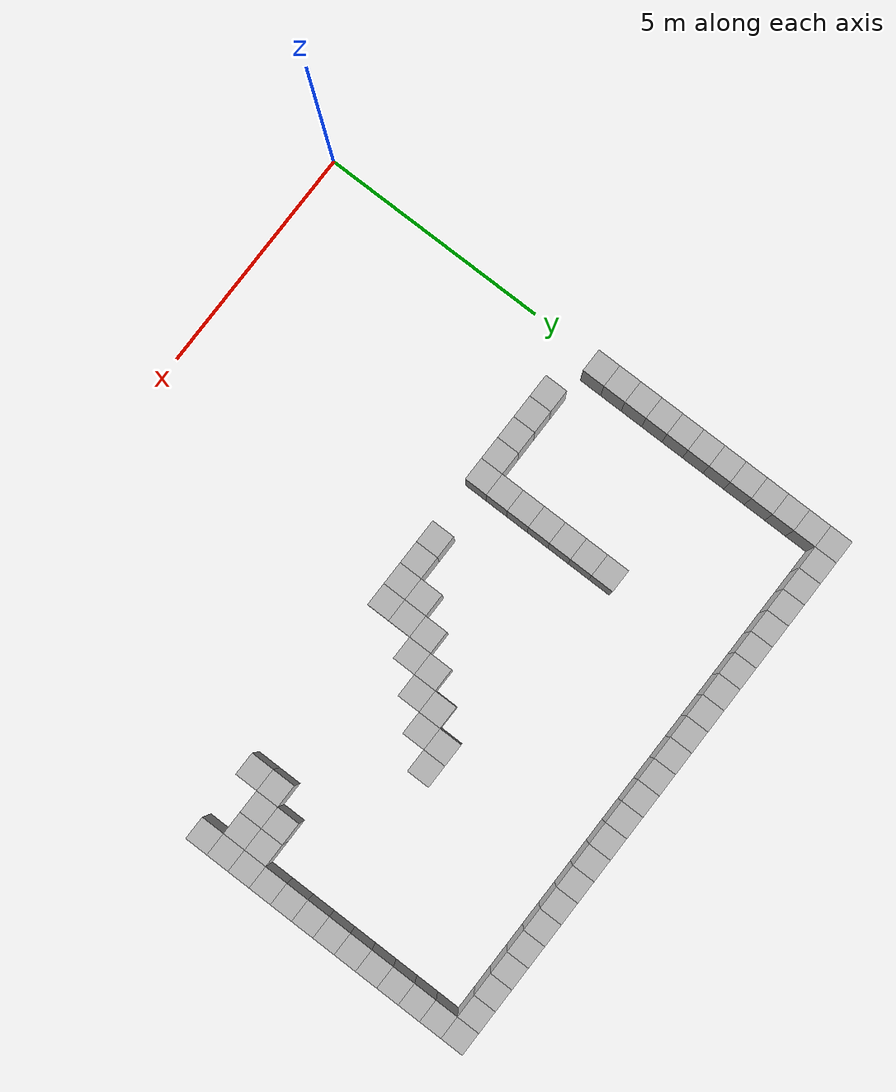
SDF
<sdf version="1.4">
 <world name="default">
  <model name="box_0_13">
   <pose>0.25 6.75 0.5 0 0 0</pose>
   <static>true</static>
   <link name="link">
    <collision name="collision"><geometry><box><size>0.5 0.5 1.0</size></box></geometry></collision>
    <visual name="visual"><geometry><box><size>0.5 0.5 1.0</size></box></geometry></visual>
   </link>
  </model>
  <model name="box_0_14">
   <pose>0.25 7.25 0.5 0 0 0</pose>
   <static>true</static>
   <link name="link">
    <collision name="collision"><geometry><box><size>0.5 0.5 1.0</size></box></geometry></collision>
    <visual name="visual"><geometry><box><size>0.5 0.5 1.0</size></box></geometry></visual>
   </link>
  </model>
  <model name="box_0_15">
   <pose>0.25 7.75 0.5 0 0 0</pose>
   <static>true</static>
   <link name="link">
    <collision name="collision"><geometry><box><size>0.5 0.5 1.0</size></box></geometry></collision>
    <visual name="visual"><geometry><box><size>0.5 0.5 1.0</size></box></geometry></visual>
   </link>
  </model>
  <model name="box_0_16">
   <pose>0.25 8.25 0.5 0 0 0</pose>
   <static>true</static>
   <link name="link">
    <collision name="collision"><geometry><box><size>0.5 0.5 1.0</size></box></geometry></collision>
    <visual name="visual"><geometry><box><size>0.5 0.5 1.0</size></box></geometry></visual>
   </link>
  </model>
  <model name="box_0_17">
   <pose>0.25 8.75 0.5 0 0 0</pose>
   <static>true</static>
   <link name="link">
    <collision name="collision"><geometry><box><size>0.5 0.5 1.0</size></box></geometry></collision>
    <visual name="visual"><geometry><box><size>0.5 0.5 1.0</size></box></geometry></visual>
   </link>
  </model>
  <model name="box_0_18">
   <pose>0.25 9.25 0.5 0 0 0</pose>
   <static>true</static>
   <link name="link">
    <collision name="collision"><geometry><box><size>0.5 0.5 1.0</size></box></geometry></collision>
    <visual name="visual"><geometry><box><size>0.5 0.5 1.0</size></box></geometry></visual>
   </link>
  </model>
  <model name="box_0_19">
   <pose>0.25 9.75 0.5 0 0 0</pose>
   <static>true</static>
   <link name="link">
    <collision name="collision"><geometry><box><size>0.5 0.5 1.0</size></box></geometry></collision>
    <visual name="visual"><geometry><box><size>0.5 0.5 1.0</size></box></geometry></visual>
   </link>
  </model>
  <model name="box_0_20">
   <pose>0.25 10.25 0.5 0 0 0</pose>
   <static>true</static>
   <link name="link">
    <collision name="collision"><geometry><box><size>0.5 0.5 1.0</size></box></geometry></collision>
    <visual name="visual"><geometry><box><size>0.5 0.5 1.0</size></box></geometry></visual>
   </link>
  </model>
  <model name="box_0_21">
   <pose>0.25 10.75 0.5 0 0 0</pose>
   <static>true</static>
   <link name="link">
    <collision name="collision"><geometry><box><size>0.5 0.5 1.0</size></box></geometry></collision>
    <visual name="visual"><geometry><box><size>0.5 0.5 1.0</size></box></geometry></visual>
   </link>
  </model>
  <model name="box_0_22">
   <pose>0.25 11.25 0.5 0 0 0</pose>
   <static>true</static>
   <link name="link">
    <collision name="collision"><geometry><box><size>0.5 0.5 1.0</size></box></geometry></collision>
    <visual name="visual"><geometry><box><size>0.5 0.5 1.0</size></box></geometry></visual>
   </link>
  </model>
  <model name="box_0_23">
   <pose>0.25 11.75 0.5 0 0 0</pose>
   <static>true</static>
   <link name="link">
    <collision name="collision"><geometry><box><size>0.5 0.5 1.0</size></box></geometry></collision>
    <visual name="visual"><geometry><box><size>0.5 0.5 1.0</size></box></geometry></visual>
   </link>
  </model>
  <model name="box_0_24">
   <pose>0.25 12.25 0.5 0 0 0</pose>
   <static>true</static>
   <link name="link">
    <collision name="collision"><geometry><box><size>0.5 0.5 1.0</size></box></geometry></collision>
    <visual name="visual"><geometry><box><size>0.5 0.5 1.0</size></box></geometry></visual>
   </link>
  </model>
  <model name="box_1_24">
   <pose>0.75 12.25 0.5 0 0 0</pose>
   <static>true</static>
   <link name="link">
    <collision name="collision"><geometry><box><size>0.5 0.5 1.0</size></box></geometry></collision>
    <visual name="visual"><geometry><box><size>0.5 0.5 1.0</size></box></geometry></visual>
   </link>
  </model>
  <model name="box_2_12">
   <pose>1.25 6.25 0.5 0 0 0</pose>
   <static>true</static>
   <link name="link">
    <collision name="collision"><geometry><box><size>0.5 0.5 1.0</size></box></geometry></collision>
    <visual name="visual"><geometry><box><size>0.5 0.5 1.0</size></box></geometry></visual>
   </link>
  </model>
  <model name="box_2_24">
   <pose>1.25 12.25 0.5 0 0 0</pose>
   <static>true</static>
   <link name="link">
    <collision name="collision"><geometry><box><size>0.5 0.5 1.0</size></box></geometry></collision>
    <visual name="visual"><geometry><box><size>0.5 0.5 1.0</size></box></geometry></visual>
   </link>
  </model>
  <model name="box_3_12">
   <pose>1.75 6.25 0.5 0 0 0</pose>
   <static>true</static>
   <link name="link">
    <collision name="collision"><geometry><box><size>0.5 0.5 1.0</size></box></geometry></collision>
    <visual name="visual"><geometry><box><size>0.5 0.5 1.0</size></box></geometry></visual>
   </link>
  </model>
  <model name="box_3_24">
   <pose>1.75 12.25 0.5 0 0 0</pose>
   <static>true</static>
   <link name="link">
    <collision name="collision"><geometry><box><size>0.5 0.5 1.0</size></box></geometry></collision>
    <visual name="visual"><geometry><box><size>0.5 0.5 1.0</size></box></geometry></visual>
   </link>
  </model>
  <model name="box_4_12">
   <pose>2.25 6.25 0.5 0 0 0</pose>
   <static>true</static>
   <link name="link">
    <collision name="collision"><geometry><box><size>0.5 0.5 1.0</size></box></geometry></collision>
    <visual name="visual"><geometry><box><size>0.5 0.5 1.0</size></box></geometry></visual>
   </link>
  </model>
  <model name="box_4_24">
   <pose>2.25 12.25 0.5 0 0 0</pose>
   <static>true</static>
   <link name="link">
    <collision name="collision"><geometry><box><size>0.5 0.5 1.0</size></box></geometry></collision>
    <visual name="visual"><geometry><box><size>0.5 0.5 1.0</size></box></geometry></visual>
   </link>
  </model>
  <model name="box_5_12">
   <pose>2.75 6.25 0.5 0 0 0</pose>
   <static>true</static>
   <link name="link">
    <collision name="collision"><geometry><box><size>0.5 0.5 1.0</size></box></geometry></collision>
    <visual name="visual"><geometry><box><size>0.5 0.5 1.0</size></box></geometry></visual>
   </link>
  </model>
  <model name="box_5_24">
   <pose>2.75 12.25 0.5 0 0 0</pose>
   <static>true</static>
   <link name="link">
    <collision name="collision"><geometry><box><size>0.5 0.5 1.0</size></box></geometry></collision>
    <visual name="visual"><geometry><box><size>0.5 0.5 1.0</size></box></geometry></visual>
   </link>
  </model>
  <model name="box_6_12">
   <pose>3.25 6.25 0.5 0 0 0</pose>
   <static>true</static>
   <link name="link">
    <collision name="collision"><geometry><box><size>0.5 0.5 1.0</size></box></geometry></collision>
    <visual name="visual"><geometry><box><size>0.5 0.5 1.0</size></box></geometry></visual>
   </link>
  </model>
  <model name="box_6_13">
   <pose>3.25 6.75 0.5 0 0 0</pose>
   <static>true</static>
   <link name="link">
    <collision name="collision"><geometry><box><size>0.5 0.5 1.0</size></box></geometry></collision>
    <visual name="visual"><geometry><box><size>0.5 0.5 1.0</size></box></geometry></visual>
   </link>
  </model>
  <model name="box_6_14">
   <pose>3.25 7.25 0.5 0 0 0</pose>
   <static>true</static>
   <link name="link">
    <collision name="collision"><geometry><box><size>0.5 0.5 1.0</size></box></geometry></collision>
    <visual name="visual"><geometry><box><size>0.5 0.5 1.0</size></box></geometry></visual>
   </link>
  </model>
  <model name="box_6_15">
   <pose>3.25 7.75 0.5 0 0 0</pose>
   <static>true</static>
   <link name="link">
    <collision name="collision"><geometry><box><size>0.5 0.5 1.0</size></box></geometry></collision>
    <visual name="visual"><geometry><box><size>0.5 0.5 1.0</size></box></geometry></visual>
   </link>
  </model>
  <model name="box_6_16">
   <pose>3.25 8.25 0.5 0 0 0</pose>
   <static>true</static>
   <link name="link">
    <collision name="collision"><geometry><box><size>0.5 0.5 1.0</size></box></geometry></collision>
    <visual name="visual"><geometry><box><size>0.5 0.5 1.0</size></box></geometry></visual>
   </link>
  </model>
  <model name="box_6_17">
   <pose>3.25 8.75 0.5 0 0 0</pose>
   <static>true</static>
   <link name="link">
    <collision name="collision"><geometry><box><size>0.5 0.5 1.0</size></box></geometry></collision>
    <visual name="visual"><geometry><box><size>0.5 0.5 1.0</size></box></geometry></visual>
   </link>
  </model>
  <model name="box_6_18">
   <pose>3.25 9.25 0.5 0 0 0</pose>
   <static>true</static>
   <link name="link">
    <collision name="collision"><geometry><box><size>0.5 0.5 1.0</size></box></geometry></collision>
    <visual name="visual"><geometry><box><size>0.5 0.5 1.0</size></box></geometry></visual>
   </link>
  </model>
  <model name="box_6_24">
   <pose>3.25 12.25 0.5 0 0 0</pose>
   <static>true</static>
   <link name="link">
    <collision name="collision"><geometry><box><size>0.5 0.5 1.0</size></box></geometry></collision>
    <visual name="visual"><geometry><box><size>0.5 0.5 1.0</size></box></geometry></visual>
   </link>
  </model>
  <model name="box_7_24">
   <pose>3.75 12.25 0.5 0 0 0</pose>
   <static>true</static>
   <link name="link">
    <collision name="collision"><geometry><box><size>0.5 0.5 1.0</size></box></geometry></collision>
    <visual name="visual"><geometry><box><size>0.5 0.5 1.0</size></box></geometry></visual>
   </link>
  </model>
  <model name="box_8_24">
   <pose>4.25 12.25 0.5 0 0 0</pose>
   <static>true</static>
   <link name="link">
    <collision name="collision"><geometry><box><size>0.5 0.5 1.0</size></box></geometry></collision>
    <visual name="visual"><geometry><box><size>0.5 0.5 1.0</size></box></geometry></visual>
   </link>
  </model>
  <model name="box_9_12">
   <pose>4.75 6.25 0.5 0 0 0</pose>
   <static>true</static>
   <link name="link">
    <collision name="collision"><geometry><box><size>0.5 0.5 1.0</size></box></geometry></collision>
    <visual name="visual"><geometry><box><size>0.5 0.5 1.0</size></box></geometry></visual>
   </link>
  </model>
  <model name="box_9_24">
   <pose>4.75 12.25 0.5 0 0 0</pose>
   <static>true</static>
   <link name="link">
    <collision name="collision"><geometry><box><size>0.5 0.5 1.0</size></box></geometry></collision>
    <visual name="visual"><geometry><box><size>0.5 0.5 1.0</size></box></geometry></visual>
   </link>
  </model>
  <model name="box_10_12">
   <pose>5.25 6.25 0.5 0 0 0</pose>
   <static>true</static>
   <link name="link">
    <collision name="collision"><geometry><box><size>0.5 0.5 1.0</size></box></geometry></collision>
    <visual name="visual"><geometry><box><size>0.5 0.5 1.0</size></box></geometry></visual>
   </link>
  </model>
  <model name="box_10_24">
   <pose>5.25 12.25 0.5 0 0 0</pose>
   <static>true</static>
   <link name="link">
    <collision name="collision"><geometry><box><size>0.5 0.5 1.0</size></box></geometry></collision>
    <visual name="visual"><geometry><box><size>0.5 0.5 1.0</size></box></geometry></visual>
   </link>
  </model>
  <model name="box_11_12">
   <pose>5.75 6.25 0.5 0 0 0</pose>
   <static>true</static>
   <link name="link">
    <collision name="collision"><geometry><box><size>0.5 0.5 1.0</size></box></geometry></collision>
    <visual name="visual"><geometry><box><size>0.5 0.5 1.0</size></box></geometry></visual>
   </link>
  </model>
  <model name="box_11_13">
   <pose>5.75 6.75 0.5 0 0 0</pose>
   <static>true</static>
   <link name="link">
    <collision name="collision"><geometry><box><size>0.5 0.5 1.0</size></box></geometry></collision>
    <visual name="visual"><geometry><box><size>0.5 0.5 1.0</size></box></geometry></visual>
   </link>
  </model>
  <model name="box_11_24">
   <pose>5.75 12.25 0.5 0 0 0</pose>
   <static>true</static>
   <link name="link">
    <collision name="collision"><geometry><box><size>0.5 0.5 1.0</size></box></geometry></collision>
    <visual name="visual"><geometry><box><size>0.5 0.5 1.0</size></box></geometry></visual>
   </link>
  </model>
  <model name="box_12_12">
   <pose>6.25 6.25 0.5 0 0 0</pose>
   <static>true</static>
   <link name="link">
    <collision name="collision"><geometry><box><size>0.5 0.5 1.0</size></box></geometry></collision>
    <visual name="visual"><geometry><box><size>0.5 0.5 1.0</size></box></geometry></visual>
   </link>
  </model>
  <model name="box_12_13">
   <pose>6.25 6.75 0.5 0 0 0</pose>
   <static>true</static>
   <link name="link">
    <collision name="collision"><geometry><box><size>0.5 0.5 1.0</size></box></geometry></collision>
    <visual name="visual"><geometry><box><size>0.5 0.5 1.0</size></box></geometry></visual>
   </link>
  </model>
  <model name="box_12_14">
   <pose>6.25 7.25 0.5 0 0 0</pose>
   <static>true</static>
   <link name="link">
    <collision name="collision"><geometry><box><size>0.5 0.5 1.0</size></box></geometry></collision>
    <visual name="visual"><geometry><box><size>0.5 0.5 1.0</size></box></geometry></visual>
   </link>
  </model>
  <model name="box_12_24">
   <pose>6.25 12.25 0.5 0 0 0</pose>
   <static>true</static>
   <link name="link">
    <collision name="collision"><geometry><box><size>0.5 0.5 1.0</size></box></geometry></collision>
    <visual name="visual"><geometry><box><size>0.5 0.5 1.0</size></box></geometry></visual>
   </link>
  </model>
  <model name="box_13_14">
   <pose>6.75 7.25 0.5 0 0 0</pose>
   <static>true</static>
   <link name="link">
    <collision name="collision"><geometry><box><size>0.5 0.5 1.0</size></box></geometry></collision>
    <visual name="visual"><geometry><box><size>0.5 0.5 1.0</size></box></geometry></visual>
   </link>
  </model>
  <model name="box_13_15">
   <pose>6.75 7.75 0.5 0 0 0</pose>
   <static>true</static>
   <link name="link">
    <collision name="collision"><geometry><box><size>0.5 0.5 1.0</size></box></geometry></collision>
    <visual name="visual"><geometry><box><size>0.5 0.5 1.0</size></box></geometry></visual>
   </link>
  </model>
  <model name="box_13_24">
   <pose>6.75 12.25 0.5 0 0 0</pose>
   <static>true</static>
   <link name="link">
    <collision name="collision"><geometry><box><size>0.5 0.5 1.0</size></box></geometry></collision>
    <visual name="visual"><geometry><box><size>0.5 0.5 1.0</size></box></geometry></visual>
   </link>
  </model>
  <model name="box_14_15">
   <pose>7.25 7.75 0.5 0 0 0</pose>
   <static>true</static>
   <link name="link">
    <collision name="collision"><geometry><box><size>0.5 0.5 1.0</size></box></geometry></collision>
    <visual name="visual"><geometry><box><size>0.5 0.5 1.0</size></box></geometry></visual>
   </link>
  </model>
  <model name="box_14_16">
   <pose>7.25 8.25 0.5 0 0 0</pose>
   <static>true</static>
   <link name="link">
    <collision name="collision"><geometry><box><size>0.5 0.5 1.0</size></box></geometry></collision>
    <visual name="visual"><geometry><box><size>0.5 0.5 1.0</size></box></geometry></visual>
   </link>
  </model>
  <model name="box_14_24">
   <pose>7.25 12.25 0.5 0 0 0</pose>
   <static>true</static>
   <link name="link">
    <collision name="collision"><geometry><box><size>0.5 0.5 1.0</size></box></geometry></collision>
    <visual name="visual"><geometry><box><size>0.5 0.5 1.0</size></box></geometry></visual>
   </link>
  </model>
  <model name="box_15_16">
   <pose>7.75 8.25 0.5 0 0 0</pose>
   <static>true</static>
   <link name="link">
    <collision name="collision"><geometry><box><size>0.5 0.5 1.0</size></box></geometry></collision>
    <visual name="visual"><geometry><box><size>0.5 0.5 1.0</size></box></geometry></visual>
   </link>
  </model>
  <model name="box_15_17">
   <pose>7.75 8.75 0.5 0 0 0</pose>
   <static>true</static>
   <link name="link">
    <collision name="collision"><geometry><box><size>0.5 0.5 1.0</size></box></geometry></collision>
    <visual name="visual"><geometry><box><size>0.5 0.5 1.0</size></box></geometry></visual>
   </link>
  </model>
  <model name="box_15_24">
   <pose>7.75 12.25 0.5 0 0 0</pose>
   <static>true</static>
   <link name="link">
    <collision name="collision"><geometry><box><size>0.5 0.5 1.0</size></box></geometry></collision>
    <visual name="visual"><geometry><box><size>0.5 0.5 1.0</size></box></geometry></visual>
   </link>
  </model>
  <model name="box_16_17">
   <pose>8.25 8.75 0.5 0 0 0</pose>
   <static>true</static>
   <link name="link">
    <collision name="collision"><geometry><box><size>0.5 0.5 1.0</size></box></geometry></collision>
    <visual name="visual"><geometry><box><size>0.5 0.5 1.0</size></box></geometry></visual>
   </link>
  </model>
  <model name="box_16_24">
   <pose>8.25 12.25 0.5 0 0 0</pose>
   <static>true</static>
   <link name="link">
    <collision name="collision"><geometry><box><size>0.5 0.5 1.0</size></box></geometry></collision>
    <visual name="visual"><geometry><box><size>0.5 0.5 1.0</size></box></geometry></visual>
   </link>
  </model>
  <model name="box_17_24">
   <pose>8.75 12.25 0.5 0 0 0</pose>
   <static>true</static>
   <link name="link">
    <collision name="collision"><geometry><box><size>0.5 0.5 1.0</size></box></geometry></collision>
    <visual name="visual"><geometry><box><size>0.5 0.5 1.0</size></box></geometry></visual>
   </link>
  </model>
  <model name="box_18_24">
   <pose>9.25 12.25 0.5 0 0 0</pose>
   <static>true</static>
   <link name="link">
    <collision name="collision"><geometry><box><size>0.5 0.5 1.0</size></box></geometry></collision>
    <visual name="visual"><geometry><box><size>0.5 0.5 1.0</size></box></geometry></visual>
   </link>
  </model>
  <model name="box_19_24">
   <pose>9.75 12.25 0.5 0 0 0</pose>
   <static>true</static>
   <link name="link">
    <collision name="collision"><geometry><box><size>0.5 0.5 1.0</size></box></geometry></collision>
    <visual name="visual"><geometry><box><size>0.5 0.5 1.0</size></box></geometry></visual>
   </link>
  </model>
  <model name="box_20_12">
   <pose>10.25 6.25 0.5 0 0 0</pose>
   <static>true</static>
   <link name="link">
    <collision name="collision"><geometry><box><size>0.5 0.5 1.0</size></box></geometry></collision>
    <visual name="visual"><geometry><box><size>0.5 0.5 1.0</size></box></geometry></visual>
   </link>
  </model>
  <model name="box_20_13">
   <pose>10.25 6.75 0.5 0 0 0</pose>
   <static>true</static>
   <link name="link">
    <collision name="collision"><geometry><box><size>0.5 0.5 1.0</size></box></geometry></collision>
    <visual name="visual"><geometry><box><size>0.5 0.5 1.0</size></box></geometry></visual>
   </link>
  </model>
  <model name="box_20_24">
   <pose>10.25 12.25 0.5 0 0 0</pose>
   <static>true</static>
   <link name="link">
    <collision name="collision"><geometry><box><size>0.5 0.5 1.0</size></box></geometry></collision>
    <visual name="visual"><geometry><box><size>0.5 0.5 1.0</size></box></geometry></visual>
   </link>
  </model>
  <model name="box_21_13">
   <pose>10.75 6.75 0.5 0 0 0</pose>
   <static>true</static>
   <link name="link">
    <collision name="collision"><geometry><box><size>0.5 0.5 1.0</size></box></geometry></collision>
    <visual name="visual"><geometry><box><size>0.5 0.5 1.0</size></box></geometry></visual>
   </link>
  </model>
  <model name="box_21_14">
   <pose>10.75 7.25 0.5 0 0 0</pose>
   <static>true</static>
   <link name="link">
    <collision name="collision"><geometry><box><size>0.5 0.5 1.0</size></box></geometry></collision>
    <visual name="visual"><geometry><box><size>0.5 0.5 1.0</size></box></geometry></visual>
   </link>
  </model>
  <model name="box_21_24">
   <pose>10.75 12.25 0.5 0 0 0</pose>
   <static>true</static>
   <link name="link">
    <collision name="collision"><geometry><box><size>0.5 0.5 1.0</size></box></geometry></collision>
    <visual name="visual"><geometry><box><size>0.5 0.5 1.0</size></box></geometry></visual>
   </link>
  </model>
  <model name="box_22_13">
   <pose>11.25 6.75 0.5 0 0 0</pose>
   <static>true</static>
   <link name="link">
    <collision name="collision"><geometry><box><size>0.5 0.5 1.0</size></box></geometry></collision>
    <visual name="visual"><geometry><box><size>0.5 0.5 1.0</size></box></geometry></visual>
   </link>
  </model>
  <model name="box_22_14">
   <pose>11.25 7.25 0.5 0 0 0</pose>
   <static>true</static>
   <link name="link">
    <collision name="collision"><geometry><box><size>0.5 0.5 1.0</size></box></geometry></collision>
    <visual name="visual"><geometry><box><size>0.5 0.5 1.0</size></box></geometry></visual>
   </link>
  </model>
  <model name="box_22_24">
   <pose>11.25 12.25 0.5 0 0 0</pose>
   <static>true</static>
   <link name="link">
    <collision name="collision"><geometry><box><size>0.5 0.5 1.0</size></box></geometry></collision>
    <visual name="visual"><geometry><box><size>0.5 0.5 1.0</size></box></geometry></visual>
   </link>
  </model>
  <model name="box_23_12">
   <pose>11.75 6.25 0.5 0 0 0</pose>
   <static>true</static>
   <link name="link">
    <collision name="collision"><geometry><box><size>0.5 0.5 1.0</size></box></geometry></collision>
    <visual name="visual"><geometry><box><size>0.5 0.5 1.0</size></box></geometry></visual>
   </link>
  </model>
  <model name="box_23_13">
   <pose>11.75 6.75 0.5 0 0 0</pose>
   <static>true</static>
   <link name="link">
    <collision name="collision"><geometry><box><size>0.5 0.5 1.0</size></box></geometry></collision>
    <visual name="visual"><geometry><box><size>0.5 0.5 1.0</size></box></geometry></visual>
   </link>
  </model>
  <model name="box_23_14">
   <pose>11.75 7.25 0.5 0 0 0</pose>
   <static>true</static>
   <link name="link">
    <collision name="collision"><geometry><box><size>0.5 0.5 1.0</size></box></geometry></collision>
    <visual name="visual"><geometry><box><size>0.5 0.5 1.0</size></box></geometry></visual>
   </link>
  </model>
  <model name="box_23_15">
   <pose>11.75 7.75 0.5 0 0 0</pose>
   <static>true</static>
   <link name="link">
    <collision name="collision"><geometry><box><size>0.5 0.5 1.0</size></box></geometry></collision>
    <visual name="visual"><geometry><box><size>0.5 0.5 1.0</size></box></geometry></visual>
   </link>
  </model>
  <model name="box_23_16">
   <pose>11.75 8.25 0.5 0 0 0</pose>
   <static>true</static>
   <link name="link">
    <collision name="collision"><geometry><box><size>0.5 0.5 1.0</size></box></geometry></collision>
    <visual name="visual"><geometry><box><size>0.5 0.5 1.0</size></box></geometry></visual>
   </link>
  </model>
  <model name="box_23_17">
   <pose>11.75 8.75 0.5 0 0 0</pose>
   <static>true</static>
   <link name="link">
    <collision name="collision"><geometry><box><size>0.5 0.5 1.0</size></box></geometry></collision>
    <visual name="visual"><geometry><box><size>0.5 0.5 1.0</size></box></geometry></visual>
   </link>
  </model>
  <model name="box_23_18">
   <pose>11.75 9.25 0.5 0 0 0</pose>
   <static>true</static>
   <link name="link">
    <collision name="collision"><geometry><box><size>0.5 0.5 1.0</size></box></geometry></collision>
    <visual name="visual"><geometry><box><size>0.5 0.5 1.0</size></box></geometry></visual>
   </link>
  </model>
  <model name="box_23_19">
   <pose>11.75 9.75 0.5 0 0 0</pose>
   <static>true</static>
   <link name="link">
    <collision name="collision"><geometry><box><size>0.5 0.5 1.0</size></box></geometry></collision>
    <visual name="visual"><geometry><box><size>0.5 0.5 1.0</size></box></geometry></visual>
   </link>
  </model>
  <model name="box_23_20">
   <pose>11.75 10.25 0.5 0 0 0</pose>
   <static>true</static>
   <link name="link">
    <collision name="collision"><geometry><box><size>0.5 0.5 1.0</size></box></geometry></collision>
    <visual name="visual"><geometry><box><size>0.5 0.5 1.0</size></box></geometry></visual>
   </link>
  </model>
  <model name="box_23_21">
   <pose>11.75 10.75 0.5 0 0 0</pose>
   <static>true</static>
   <link name="link">
    <collision name="collision"><geometry><box><size>0.5 0.5 1.0</size></box></geometry></collision>
    <visual name="visual"><geometry><box><size>0.5 0.5 1.0</size></box></geometry></visual>
   </link>
  </model>
  <model name="box_23_22">
   <pose>11.75 11.25 0.5 0 0 0</pose>
   <static>true</static>
   <link name="link">
    <collision name="collision"><geometry><box><size>0.5 0.5 1.0</size></box></geometry></collision>
    <visual name="visual"><geometry><box><size>0.5 0.5 1.0</size></box></geometry></visual>
   </link>
  </model>
  <model name="box_23_23">
   <pose>11.75 11.75 0.5 0 0 0</pose>
   <static>true</static>
   <link name="link">
    <collision name="collision"><geometry><box><size>0.5 0.5 1.0</size></box></geometry></collision>
    <visual name="visual"><geometry><box><size>0.5 0.5 1.0</size></box></geometry></visual>
   </link>
  </model>
  <model name="box_23_24">
   <pose>11.75 12.25 0.5 0 0 0</pose>
   <static>true</static>
   <link name="link">
    <collision name="collision"><geometry><box><size>0.5 0.5 1.0</size></box></geometry></collision>
    <visual name="visual"><geometry><box><size>0.5 0.5 1.0</size></box></geometry></visual>
   </link>
  </model>
 </world>
</sdf>
